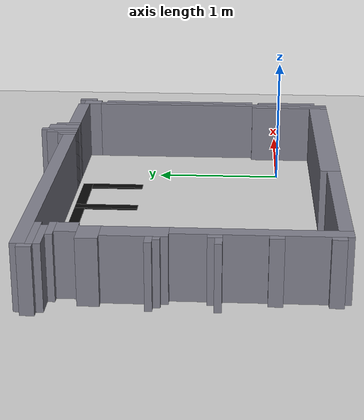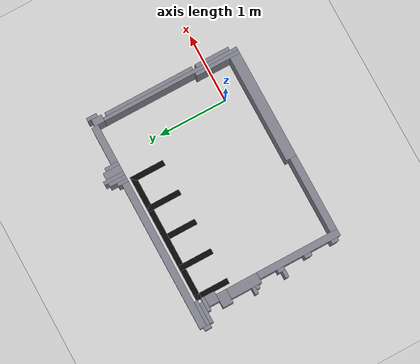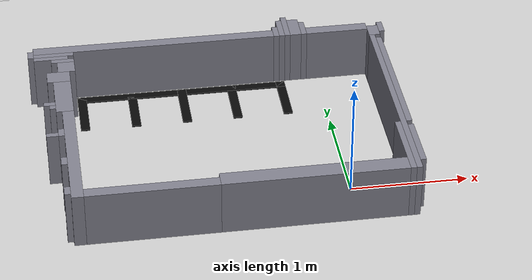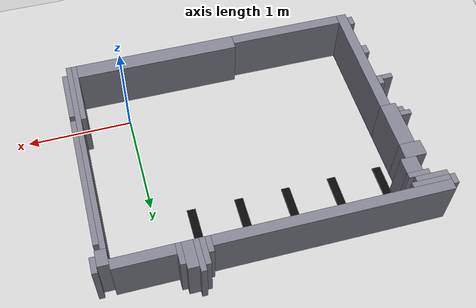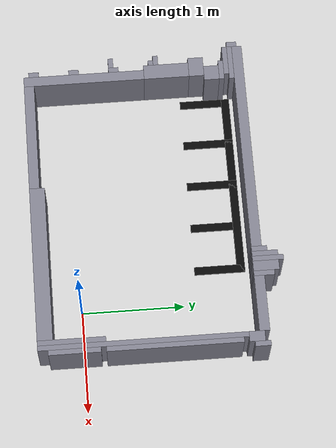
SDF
<?xml version="1.0" ?>
<sdf version="1.6">
  <world name="parkinglot">
    <physics name="8ms" type="ode"><max_step_size>0.008</max_step_size><real_time_factor>1</real_time_factor><real_time_update_rate>125</real_time_update_rate></physics>
    <plugin name="gz::sim::systems::Physics" filename="gz-sim-physics-system"/>
    <plugin name="gz::sim::systems::UserCommands" filename="gz-sim-user-commands-system"/>
    <plugin name="gz::sim::systems::SceneBroadcaster" filename="gz-sim-scene-broadcaster-system"/>
    <plugin name="gz::sim::systems::Contact" filename="gz-sim-contact-system"/>
    <plugin name="gz::sim::systems::Sensors" filename="gz-sim-sensors-system"><render_engine>ogre2</render_engine></plugin>
    <plugin name="gz::sim::systems::Imu" filename="gz-sim-imu-system"/>
    <plugin name="gz::sim::systems::NavSat" filename="gz-sim-navsat-system"/>
    <light name="sun" type="directional"><cast_shadows>1</cast_shadows><pose>0 0 10 0 0 0</pose>
      <diffuse>0.8 0.8 0.8 1</diffuse><specular>0.2 0.2 0.2 1</specular>
      <attenuation><range>1000</range><constant>0.9</constant><linear>0.01</linear><quadratic>0.001</quadratic></attenuation>
      <direction>-0.5 0.1 -0.9</direction></light>
    <model name="ground_plane"><static>1</static><pose>0 0 0.015 0 0 0</pose><link name="link">
        <collision name="collision"><geometry><plane><normal>0 0 1</normal><size>100 100</size></plane></geometry>
          <surface><friction><ode><mu>100</mu><mu2>50</mu2></ode></friction></surface></collision>
        <visual name="visual"><geometry><plane><normal>0 0 1</normal><size>100 100</size></plane></geometry>
          <material><ambient>0.8 0.8 0.8 1</ambient><diffuse>0.8 0.8 0.8 1</diffuse></material></visual></link></model>
    <model name="parkinglot_walls"><static>true</static><link name="link">
        <collision name="wc0"><pose>-0.2750 1.8180 0.2500 0 0 0</pose>
          <geometry><box><size>0.0500 0.3000 0.5000</size></box></geometry></collision>
        <visual name="wv0"><pose>-0.2750 1.8180 0.2500 0 0 0</pose>
          <geometry><box><size>0.0500 0.3000 0.5000</size></box></geometry>
          <material><ambient>0.4 0.4 0.45 1</ambient><diffuse>0.5 0.5 0.55 1</diffuse></material></visual>
        <collision name="wc1"><pose>-0.3250 1.7930 0.2500 0 0 0</pose>
          <geometry><box><size>0.0500 0.2500 0.5000</size></box></geometry></collision>
        <visual name="wv1"><pose>-0.3250 1.7930 0.2500 0 0 0</pose>
          <geometry><box><size>0.0500 0.2500 0.5000</size></box></geometry>
          <material><ambient>0.4 0.4 0.45 1</ambient><diffuse>0.5 0.5 0.55 1</diffuse></material></visual>
        <collision name="wc2"><pose>-0.2000 1.7930 0.2500 0 0 0</pose>
          <geometry><box><size>0.1000 0.2500 0.5000</size></box></geometry></collision>
        <visual name="wv2"><pose>-0.2000 1.7930 0.2500 0 0 0</pose>
          <geometry><box><size>0.1000 0.2500 0.5000</size></box></geometry>
          <material><ambient>0.4 0.4 0.45 1</ambient><diffuse>0.5 0.5 0.55 1</diffuse></material></visual>
        <collision name="wc3"><pose>-0.1250 1.7680 0.2500 0 0 0</pose>
          <geometry><box><size>0.0500 0.2000 0.5000</size></box></geometry></collision>
        <visual name="wv3"><pose>-0.1250 1.7680 0.2500 0 0 0</pose>
          <geometry><box><size>0.0500 0.2000 0.5000</size></box></geometry>
          <material><ambient>0.4 0.4 0.45 1</ambient><diffuse>0.5 0.5 0.55 1</diffuse></material></visual>
        <collision name="wc4"><pose>-0.3750 1.7430 0.2500 0 0 0</pose>
          <geometry><box><size>0.0500 0.1500 0.5000</size></box></geometry></collision>
        <visual name="wv4"><pose>-0.3750 1.7430 0.2500 0 0 0</pose>
          <geometry><box><size>0.0500 0.1500 0.5000</size></box></geometry>
          <material><ambient>0.4 0.4 0.45 1</ambient><diffuse>0.5 0.5 0.55 1</diffuse></material></visual>
        <collision name="wc5"><pose>-1.4750 1.7180 0.2500 0 0 0</pose>
          <geometry><box><size>2.1500 0.1000 0.5000</size></box></geometry></collision>
        <visual name="wv5"><pose>-1.4750 1.7180 0.2500 0 0 0</pose>
          <geometry><box><size>2.1500 0.1000 0.5000</size></box></geometry>
          <material><ambient>0.4 0.4 0.45 1</ambient><diffuse>0.5 0.5 0.55 1</diffuse></material></visual>
        <collision name="wc6"><pose>0.1750 1.7180 0.2500 0 0 0</pose>
          <geometry><box><size>0.5500 0.1000 0.5000</size></box></geometry></collision>
        <visual name="wv6"><pose>0.1750 1.7180 0.2500 0 0 0</pose>
          <geometry><box><size>0.5500 0.1000 0.5000</size></box></geometry>
          <material><ambient>0.4 0.4 0.45 1</ambient><diffuse>0.5 0.5 0.55 1</diffuse></material></visual>
        <collision name="wc7"><pose>0.5750 1.6930 0.2500 0 0 0</pose>
          <geometry><box><size>0.0500 0.1500 0.5000</size></box></geometry></collision>
        <visual name="wv7"><pose>0.5750 1.6930 0.2500 0 0 0</pose>
          <geometry><box><size>0.0500 0.1500 0.5000</size></box></geometry>
          <material><ambient>0.4 0.4 0.45 1</ambient><diffuse>0.5 0.5 0.55 1</diffuse></material></visual>
        <collision name="wc8"><pose>-2.5750 1.6680 0.2500 0 0 0</pose>
          <geometry><box><size>0.0500 0.1000 0.5000</size></box></geometry></collision>
        <visual name="wv8"><pose>-2.5750 1.6680 0.2500 0 0 0</pose>
          <geometry><box><size>0.0500 0.1000 0.5000</size></box></geometry>
          <material><ambient>0.4 0.4 0.45 1</ambient><diffuse>0.5 0.5 0.55 1</diffuse></material></visual>
        <collision name="wc9"><pose>0.5000 1.6430 0.2500 0 0 0</pose>
          <geometry><box><size>0.1000 0.1500 0.5000</size></box></geometry></collision>
        <visual name="wv9"><pose>0.5000 1.6430 0.2500 0 0 0</pose>
          <geometry><box><size>0.1000 0.1500 0.5000</size></box></geometry>
          <material><ambient>0.4 0.4 0.45 1</ambient><diffuse>0.5 0.5 0.55 1</diffuse></material></visual>
        <collision name="wc10"><pose>-2.3750 1.6430 0.2500 0 0 0</pose>
          <geometry><box><size>0.3500 0.0500 0.5000</size></box></geometry></collision>
        <visual name="wv10"><pose>-2.3750 1.6430 0.2500 0 0 0</pose>
          <geometry><box><size>0.3500 0.0500 0.5000</size></box></geometry>
          <material><ambient>0.4 0.4 0.45 1</ambient><diffuse>0.5 0.5 0.55 1</diffuse></material></visual>
        <collision name="wc11"><pose>-2.4000 1.5930 0.2500 0 0 0</pose>
          <geometry><box><size>0.3000 0.0500 0.5000</size></box></geometry></collision>
        <visual name="wv11"><pose>-2.4000 1.5930 0.2500 0 0 0</pose>
          <geometry><box><size>0.3000 0.0500 0.5000</size></box></geometry>
          <material><ambient>0.4 0.4 0.45 1</ambient><diffuse>0.5 0.5 0.55 1</diffuse></material></visual>
        <collision name="wc12"><pose>-2.3000 1.5430 0.2500 0 0 0</pose>
          <geometry><box><size>0.2000 0.0500 0.5000</size></box></geometry></collision>
        <visual name="wv12"><pose>-2.3000 1.5430 0.2500 0 0 0</pose>
          <geometry><box><size>0.2000 0.0500 0.5000</size></box></geometry>
          <material><ambient>0.4 0.4 0.45 1</ambient><diffuse>0.5 0.5 0.55 1</diffuse></material></visual>
        <collision name="wc13"><pose>0.4750 0.5680 0.2500 0 0 0</pose>
          <geometry><box><size>0.0500 2.0000 0.5000</size></box></geometry></collision>
        <visual name="wv13"><pose>0.4750 0.5680 0.2500 0 0 0</pose>
          <geometry><box><size>0.0500 2.0000 0.5000</size></box></geometry>
          <material><ambient>0.4 0.4 0.45 1</ambient><diffuse>0.5 0.5 0.55 1</diffuse></material></visual>
        <collision name="wc14"><pose>-2.2750 1.4430 0.2500 0 0 0</pose>
          <geometry><box><size>0.1500 0.1500 0.5000</size></box></geometry></collision>
        <visual name="wv14"><pose>-2.2750 1.4430 0.2500 0 0 0</pose>
          <geometry><box><size>0.1500 0.1500 0.5000</size></box></geometry>
          <material><ambient>0.4 0.4 0.45 1</ambient><diffuse>0.5 0.5 0.55 1</diffuse></material></visual>
        <collision name="wc15"><pose>0.5250 0.8680 0.2500 0 0 0</pose>
          <geometry><box><size>0.0500 1.3000 0.5000</size></box></geometry></collision>
        <visual name="wv15"><pose>0.5250 0.8680 0.2500 0 0 0</pose>
          <geometry><box><size>0.0500 1.3000 0.5000</size></box></geometry>
          <material><ambient>0.4 0.4 0.45 1</ambient><diffuse>0.5 0.5 0.55 1</diffuse></material></visual>
        <collision name="wc16"><pose>-2.3500 1.2930 0.2500 0 0 0</pose>
          <geometry><box><size>0.2000 0.1500 0.5000</size></box></geometry></collision>
        <visual name="wv16"><pose>-2.3500 1.2930 0.2500 0 0 0</pose>
          <geometry><box><size>0.2000 0.1500 0.5000</size></box></geometry>
          <material><ambient>0.4 0.4 0.45 1</ambient><diffuse>0.5 0.5 0.55 1</diffuse></material></visual>
        <collision name="wc17"><pose>-2.3250 0.9930 0.2500 0 0 0</pose>
          <geometry><box><size>0.1500 0.4500 0.5000</size></box></geometry></collision>
        <visual name="wv17"><pose>-2.3250 0.9930 0.2500 0 0 0</pose>
          <geometry><box><size>0.1500 0.4500 0.5000</size></box></geometry>
          <material><ambient>0.4 0.4 0.45 1</ambient><diffuse>0.5 0.5 0.55 1</diffuse></material></visual>
        <collision name="wc18"><pose>-2.4500 0.8930 0.2500 0 0 0</pose>
          <geometry><box><size>0.1000 0.0500 0.5000</size></box></geometry></collision>
        <visual name="wv18"><pose>-2.4500 0.8930 0.2500 0 0 0</pose>
          <geometry><box><size>0.1000 0.0500 0.5000</size></box></geometry>
          <material><ambient>0.4 0.4 0.45 1</ambient><diffuse>0.5 0.5 0.55 1</diffuse></material></visual>
        <collision name="wc19"><pose>-2.4250 0.8430 0.2500 0 0 0</pose>
          <geometry><box><size>0.0500 0.0500 0.5000</size></box></geometry></collision>
        <visual name="wv19"><pose>-2.4250 0.8430 0.2500 0 0 0</pose>
          <geometry><box><size>0.0500 0.0500 0.5000</size></box></geometry>
          <material><ambient>0.4 0.4 0.45 1</ambient><diffuse>0.5 0.5 0.55 1</diffuse></material></visual>
        <collision name="wc20"><pose>-2.3000 0.1680 0.2500 0 0 0</pose>
          <geometry><box><size>0.1000 1.2000 0.5000</size></box></geometry></collision>
        <visual name="wv20"><pose>-2.3000 0.1680 0.2500 0 0 0</pose>
          <geometry><box><size>0.1000 1.2000 0.5000</size></box></geometry>
          <material><ambient>0.4 0.4 0.45 1</ambient><diffuse>0.5 0.5 0.55 1</diffuse></material></visual>
        <collision name="wc21"><pose>-2.3750 0.4680 0.2500 0 0 0</pose>
          <geometry><box><size>0.0500 0.1000 0.5000</size></box></geometry></collision>
        <visual name="wv21"><pose>-2.3750 0.4680 0.2500 0 0 0</pose>
          <geometry><box><size>0.0500 0.1000 0.5000</size></box></geometry>
          <material><ambient>0.4 0.4 0.45 1</ambient><diffuse>0.5 0.5 0.55 1</diffuse></material></visual>
        <collision name="wc22"><pose>-2.4500 0.4430 0.2500 0 0 0</pose>
          <geometry><box><size>0.1000 0.0500 0.5000</size></box></geometry></collision>
        <visual name="wv22"><pose>-2.4500 0.4430 0.2500 0 0 0</pose>
          <geometry><box><size>0.1000 0.0500 0.5000</size></box></geometry>
          <material><ambient>0.4 0.4 0.45 1</ambient><diffuse>0.5 0.5 0.55 1</diffuse></material></visual>
        <collision name="wc23"><pose>0.4250 -0.1070 0.2500 0 0 0</pose>
          <geometry><box><size>0.0500 0.6500 0.5000</size></box></geometry></collision>
        <visual name="wv23"><pose>0.4250 -0.1070 0.2500 0 0 0</pose>
          <geometry><box><size>0.0500 0.6500 0.5000</size></box></geometry>
          <material><ambient>0.4 0.4 0.45 1</ambient><diffuse>0.5 0.5 0.55 1</diffuse></material></visual>
        <collision name="wc24"><pose>0.5250 -0.0820 0.2500 0 0 0</pose>
          <geometry><box><size>0.0500 0.5000 0.5000</size></box></geometry></collision>
        <visual name="wv24"><pose>0.5250 -0.0820 0.2500 0 0 0</pose>
          <geometry><box><size>0.0500 0.5000 0.5000</size></box></geometry>
          <material><ambient>0.4 0.4 0.45 1</ambient><diffuse>0.5 0.5 0.55 1</diffuse></material></visual>
        <collision name="wc25"><pose>-2.3750 0.0680 0.2500 0 0 0</pose>
          <geometry><box><size>0.0500 0.1000 0.5000</size></box></geometry></collision>
        <visual name="wv25"><pose>-2.3750 0.0680 0.2500 0 0 0</pose>
          <geometry><box><size>0.0500 0.1000 0.5000</size></box></geometry>
          <material><ambient>0.4 0.4 0.45 1</ambient><diffuse>0.5 0.5 0.55 1</diffuse></material></visual>
        <collision name="wc26"><pose>-2.3750 -0.3320 0.2500 0 0 0</pose>
          <geometry><box><size>0.0500 0.1000 0.5000</size></box></geometry></collision>
        <visual name="wv26"><pose>-2.3750 -0.3320 0.2500 0 0 0</pose>
          <geometry><box><size>0.0500 0.1000 0.5000</size></box></geometry>
          <material><ambient>0.4 0.4 0.45 1</ambient><diffuse>0.5 0.5 0.55 1</diffuse></material></visual>
        <collision name="wc27"><pose>-0.3750 -0.3570 0.2500 0 0 0</pose>
          <geometry><box><size>1.5500 0.1500 0.5000</size></box></geometry></collision>
        <visual name="wv27"><pose>-0.3750 -0.3570 0.2500 0 0 0</pose>
          <geometry><box><size>1.5500 0.1500 0.5000</size></box></geometry>
          <material><ambient>0.4 0.4 0.45 1</ambient><diffuse>0.5 0.5 0.55 1</diffuse></material></visual>
        <collision name="wc28"><pose>-1.7000 -0.3820 0.2500 0 0 0</pose>
          <geometry><box><size>1.1000 0.1000 0.5000</size></box></geometry></collision>
        <visual name="wv28"><pose>-1.7000 -0.3820 0.2500 0 0 0</pose>
          <geometry><box><size>1.1000 0.1000 0.5000</size></box></geometry>
          <material><ambient>0.4 0.4 0.45 1</ambient><diffuse>0.5 0.5 0.55 1</diffuse></material></visual>
    </link></model>
    <model name="parking_lines"><static>true</static><link name="link">
        <visual name="tape0"><pose>-1.2500 1.5880 0.0260 0 0 0</pose>
          <geometry><box><size>1.8800 0.0800 0.0120</size></box></geometry>
          <material><ambient>0.02 0.02 0.02 1</ambient><diffuse>0.03 0.03 0.03 1</diffuse><emissive>0.02 0.02 0.02 1</emissive></material></visual>

        <visual name="tape1"><pose>-2.1500 1.3780 0.0260 0 0 0</pose>
          <geometry><box><size>0.0800 0.5000 0.0120</size></box></geometry>
          <material><ambient>0.02 0.02 0.02 1</ambient><diffuse>0.03 0.03 0.03 1</diffuse><emissive>0.02 0.02 0.02 1</emissive></material></visual>

        <visual name="tape2"><pose>-1.7000 1.3780 0.0260 0 0 0</pose>
          <geometry><box><size>0.0800 0.5000 0.0120</size></box></geometry>
          <material><ambient>0.02 0.02 0.02 1</ambient><diffuse>0.03 0.03 0.03 1</diffuse><emissive>0.02 0.02 0.02 1</emissive></material></visual>

        <visual name="tape3"><pose>-1.2500 1.3780 0.0260 0 0 0</pose>
          <geometry><box><size>0.0800 0.5000 0.0120</size></box></geometry>
          <material><ambient>0.02 0.02 0.02 1</ambient><diffuse>0.03 0.03 0.03 1</diffuse><emissive>0.02 0.02 0.02 1</emissive></material></visual>

        <visual name="tape4"><pose>-0.8000 1.3780 0.0260 0 0 0</pose>
          <geometry><box><size>0.0800 0.5000 0.0120</size></box></geometry>
          <material><ambient>0.02 0.02 0.02 1</ambient><diffuse>0.03 0.03 0.03 1</diffuse><emissive>0.02 0.02 0.02 1</emissive></material></visual>

        <visual name="tape5"><pose>-0.3500 1.3780 0.0260 0 0 0</pose>
          <geometry><box><size>0.0800 0.5000 0.0120</size></box></geometry>
          <material><ambient>0.02 0.02 0.02 1</ambient><diffuse>0.03 0.03 0.03 1</diffuse><emissive>0.02 0.02 0.02 1</emissive></material></visual>
    </link></model>

  </world>
</sdf>
